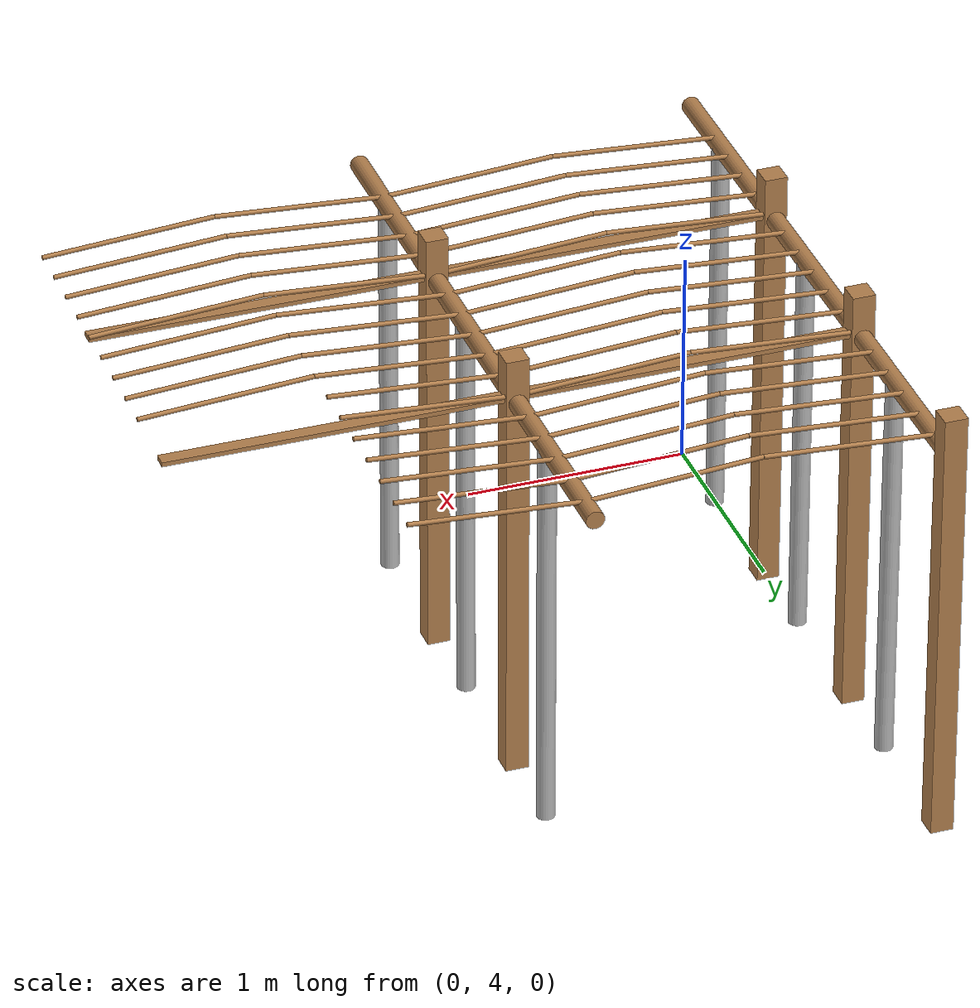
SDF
<sdf version="1.4">
 <model name="pergola">
  <include><name>post_5</name><pose>0.0 5.0 0 0 0 0</pose><uri>model://post</uri></include>
  <include><name>post_6</name><pose>0.0 6.0 0 0 0 0</pose><uri>model://post</uri></include>
  <include><name>post_7</name><pose>0.0 7.0 0 0 0 0</pose><uri>model://post</uri></include>
  <include><name>post_16</name><pose>1.5 5.0 0 0 0 0</pose><uri>model://post</uri></include>
  <include><name>post_17</name><pose>1.5 6.0 0 0 0 0</pose><uri>model://post</uri></include>
  <link name="beam_5">
   <pose>0.75 5.0 1.81 0 0 0</pose>
   <collision name="collision"><geometry><box><size>1.5 0.06 0.02</size></box></geometry></collision>
   <visual name="visual">
    <geometry><box><size>1.5 0.06 0.02</size></box></geometry>
    <material><script><name>Gazebo/Wood</name></script></material>
   </visual>
   <inertial>
    <mass>5</mass>
    <inertia>
     <ixx>0.0016666666666666668</ixx>
     <ixy>0.0</ixy>
     <ixz>0.0</ixz>
     <iyy>0.9390000000000001</iyy>
     <iyz>0.0</iyz>
     <izz>0.9376666666666665</izz>
    </inertia>
   </inertial>
  </link>
  <link name="beam_6">
   <pose>0.75 6.0 1.81 0 0 0</pose>
   <collision name="collision"><geometry><box><size>1.5 0.06 0.02</size></box></geometry></collision>
   <visual name="visual">
    <geometry><box><size>1.5 0.06 0.02</size></box></geometry>
    <material><script><name>Gazebo/Wood</name></script></material>
   </visual>
   <inertial>
    <mass>5</mass>
    <inertia>
     <ixx>0.0016666666666666668</ixx>
     <ixy>0.0</ixy>
     <ixz>0.0</ixz>
     <iyy>0.9390000000000001</iyy>
     <iyz>0.0</iyz>
     <izz>0.9376666666666665</izz>
    </inertia>
   </inertial>
  </link>
  <link name="beam_16">
   <pose>2.25 5.0 1.81 0 0 0</pose>
   <collision name="collision"><geometry><box><size>1.5 0.06 0.02</size></box></geometry></collision>
   <visual name="visual">
    <geometry><box><size>1.5 0.06 0.02</size></box></geometry>
    <material><script><name>Gazebo/Wood</name></script></material>
   </visual>
   <inertial>
    <mass>5</mass>
    <inertia>
     <ixx>0.0016666666666666668</ixx>
     <ixy>0.0</ixy>
     <ixz>0.0</ixz>
     <iyy>0.9390000000000001</iyy>
     <iyz>0.0</iyz>
     <izz>0.9376666666666665</izz>
    </inertia>
   </inertial>
  </link>
  <link name="beam_17">
   <pose>2.25 6.0 1.81 0 0 0</pose>
   <collision name="collision"><geometry><box><size>1.5 0.06 0.02</size></box></geometry></collision>
   <visual name="visual">
    <geometry><box><size>1.5 0.06 0.02</size></box></geometry>
    <material><script><name>Gazebo/Wood</name></script></material>
   </visual>
   <inertial>
    <mass>5</mass>
    <inertia>
     <ixx>0.0016666666666666668</ixx>
     <ixy>0.0</ixy>
     <ixz>0.0</ixz>
     <iyy>0.9390000000000001</iyy>
     <iyz>0.0</iyz>
     <izz>0.9376666666666665</izz>
    </inertia>
   </inertial>
  </link>
  <include><name>tree_4</name><pose>0.0 4.4 0 0 0 0</pose><uri>model://tree_trunk</uri></include>
  <include><name>tree_5</name><pose>0.0 5.4 0 0 0 0</pose><uri>model://tree_trunk</uri></include>
  <include><name>tree_6</name><pose>0.0 6.4 0 0 0 0</pose><uri>model://tree_trunk</uri></include>
  <include><name>tree_14</name><pose>1.5 4.4 0 0 0 0</pose><uri>model://tree_trunk</uri></include>
  <include><name>tree_15</name><pose>1.5 5.4 0 0 0 0</pose><uri>model://tree_trunk</uri></include>
  <include><name>tree_16</name><pose>1.5 6.4 0 0 0 0</pose><uri>model://tree_trunk</uri></include>
  <link name="baseBranch_4">
   <pose>0.0 4.5 1.8 1.5707963267948966 0 0</pose>
   <collision name="collision">
    <geometry><cylinder><radius>0.04</radius><length>0.94</length></cylinder></geometry>
   </collision>
   <visual name="visual">
    <geometry><cylinder><radius>0.04</radius><length>0.94</length></cylinder></geometry>
    <material><script><name>Gazebo/WoodFloor</name></script></material>
   </visual>
   <inertial>
    <mass>10</mass>
    <inertia>
     <ixx>0.7403333333333334</ixx>
     <ixy>0.0</ixy>
     <ixz>0.0</ixz>
     <iyy>0.7403333333333334</iyy>
     <iyz>0.0</iyz>
     <izz>0.008</izz>
    </inertia>
   </inertial>
  </link>
  <link name="baseBranch_5">
   <pose>0.0 5.5 1.8 1.5707963267948966 0 0</pose>
   <collision name="collision">
    <geometry><cylinder><radius>0.04</radius><length>0.94</length></cylinder></geometry>
   </collision>
   <visual name="visual">
    <geometry><cylinder><radius>0.04</radius><length>0.94</length></cylinder></geometry>
    <material><script><name>Gazebo/WoodFloor</name></script></material>
   </visual>
   <inertial>
    <mass>10</mass>
    <inertia>
     <ixx>0.7403333333333334</ixx>
     <ixy>0.0</ixy>
     <ixz>0.0</ixz>
     <iyy>0.7403333333333334</iyy>
     <iyz>0.0</iyz>
     <izz>0.008</izz>
    </inertia>
   </inertial>
  </link>
  <link name="baseBranch_6">
   <pose>0.0 6.5 1.8 1.5707963267948966 0 0</pose>
   <collision name="collision">
    <geometry><cylinder><radius>0.04</radius><length>0.94</length></cylinder></geometry>
   </collision>
   <visual name="visual">
    <geometry><cylinder><radius>0.04</radius><length>0.94</length></cylinder></geometry>
    <material><script><name>Gazebo/WoodFloor</name></script></material>
   </visual>
   <inertial>
    <mass>10</mass>
    <inertia>
     <ixx>0.7403333333333334</ixx>
     <ixy>0.0</ixy>
     <ixz>0.0</ixz>
     <iyy>0.7403333333333334</iyy>
     <iyz>0.0</iyz>
     <izz>0.008</izz>
    </inertia>
   </inertial>
  </link>
  <link name="baseBranch_14">
   <pose>1.5 4.5 1.8 1.5707963267948966 0 0</pose>
   <collision name="collision">
    <geometry><cylinder><radius>0.04</radius><length>0.94</length></cylinder></geometry>
   </collision>
   <visual name="visual">
    <geometry><cylinder><radius>0.04</radius><length>0.94</length></cylinder></geometry>
    <material><script><name>Gazebo/WoodFloor</name></script></material>
   </visual>
   <inertial>
    <mass>10</mass>
    <inertia>
     <ixx>0.7403333333333334</ixx>
     <ixy>0.0</ixy>
     <ixz>0.0</ixz>
     <iyy>0.7403333333333334</iyy>
     <iyz>0.0</iyz>
     <izz>0.008</izz>
    </inertia>
   </inertial>
  </link>
  <link name="baseBranch_15">
   <pose>1.5 5.5 1.8 1.5707963267948966 0 0</pose>
   <collision name="collision">
    <geometry><cylinder><radius>0.04</radius><length>0.94</length></cylinder></geometry>
   </collision>
   <visual name="visual">
    <geometry><cylinder><radius>0.04</radius><length>0.94</length></cylinder></geometry>
    <material><script><name>Gazebo/WoodFloor</name></script></material>
   </visual>
   <inertial>
    <mass>10</mass>
    <inertia>
     <ixx>0.7403333333333334</ixx>
     <ixy>0.0</ixy>
     <ixz>0.0</ixz>
     <iyy>0.7403333333333334</iyy>
     <iyz>0.0</iyz>
     <izz>0.008</izz>
    </inertia>
   </inertial>
  </link>
  <link name="baseBranch_16">
   <pose>1.5 6.5 1.8 1.5707963267948966 0 0</pose>
   <collision name="collision">
    <geometry><cylinder><radius>0.04</radius><length>0.94</length></cylinder></geometry>
   </collision>
   <visual name="visual">
    <geometry><cylinder><radius>0.04</radius><length>0.94</length></cylinder></geometry>
    <material><script><name>Gazebo/WoodFloor</name></script></material>
   </visual>
   <inertial>
    <mass>10</mass>
    <inertia>
     <ixx>0.7403333333333334</ixx>
     <ixy>0.0</ixy>
     <ixz>0.0</ixz>
     <iyy>0.7403333333333334</iyy>
     <iyz>0.0</iyz>
     <izz>0.008</izz>
    </inertia>
   </inertial>
  </link>
  <link name="vine_52">
   <pose>0.375 4.363333333333333 1.85 0 1.5042281630190728 0</pose>
   <collision name="collision">
    <geometry><cylinder><radius>0.01</radius><length>0.7516648189186453</length></cylinder></geometry>
   </collision>
   <visual name="visual">
    <geometry><cylinder><radius>0.01</radius><length>0.7516648189186453</length></cylinder></geometry>
    <material><script><name>Gazebo/WoodFloor</name></script></material>
   </visual>
   <inertial>
    <mass>5</mass>
    <inertia>
     <ixx>0.23554166666666657</ixx>
     <ixy>0.0</ixy>
     <ixz>0.0</ixz>
     <iyy>0.23554166666666657</iyy>
     <iyz>0.0</iyz>
     <izz>0.00025</izz>
    </inertia>
   </inertial>
  </link>
  <link name="vine_53">
   <pose>1.125 4.363333333333333 1.85 0 -1.5042281630190728 0</pose>
   <collision name="collision">
    <geometry><cylinder><radius>0.01</radius><length>0.7516648189186453</length></cylinder></geometry>
   </collision>
   <visual name="visual">
    <geometry><cylinder><radius>0.01</radius><length>0.7516648189186453</length></cylinder></geometry>
    <material><script><name>Gazebo/WoodFloor</name></script></material>
   </visual>
   <inertial>
    <mass>5</mass>
    <inertia>
     <ixx>0.23554166666666657</ixx>
     <ixy>0.0</ixy>
     <ixz>0.0</ixz>
     <iyy>0.23554166666666657</iyy>
     <iyz>0.0</iyz>
     <izz>0.00025</izz>
    </inertia>
   </inertial>
  </link>
  <link name="vine_54">
   <pose>0.375 4.53 1.85 0 1.5042281630190728 0</pose>
   <collision name="collision">
    <geometry><cylinder><radius>0.01</radius><length>0.7516648189186453</length></cylinder></geometry>
   </collision>
   <visual name="visual">
    <geometry><cylinder><radius>0.01</radius><length>0.7516648189186453</length></cylinder></geometry>
    <material><script><name>Gazebo/WoodFloor</name></script></material>
   </visual>
   <inertial>
    <mass>5</mass>
    <inertia>
     <ixx>0.23554166666666657</ixx>
     <ixy>0.0</ixy>
     <ixz>0.0</ixz>
     <iyy>0.23554166666666657</iyy>
     <iyz>0.0</iyz>
     <izz>0.00025</izz>
    </inertia>
   </inertial>
  </link>
  <link name="vine_55">
   <pose>1.125 4.53 1.85 0 -1.5042281630190728 0</pose>
   <collision name="collision">
    <geometry><cylinder><radius>0.01</radius><length>0.7516648189186453</length></cylinder></geometry>
   </collision>
   <visual name="visual">
    <geometry><cylinder><radius>0.01</radius><length>0.7516648189186453</length></cylinder></geometry>
    <material><script><name>Gazebo/WoodFloor</name></script></material>
   </visual>
   <inertial>
    <mass>5</mass>
    <inertia>
     <ixx>0.23554166666666657</ixx>
     <ixy>0.0</ixy>
     <ixz>0.0</ixz>
     <iyy>0.23554166666666657</iyy>
     <iyz>0.0</iyz>
     <izz>0.00025</izz>
    </inertia>
   </inertial>
  </link>
  <link name="vine_56">
   <pose>0.375 4.696666666666666 1.85 0 1.5042281630190728 0</pose>
   <collision name="collision">
    <geometry><cylinder><radius>0.01</radius><length>0.7516648189186453</length></cylinder></geometry>
   </collision>
   <visual name="visual">
    <geometry><cylinder><radius>0.01</radius><length>0.7516648189186453</length></cylinder></geometry>
    <material><script><name>Gazebo/WoodFloor</name></script></material>
   </visual>
   <inertial>
    <mass>5</mass>
    <inertia>
     <ixx>0.23554166666666657</ixx>
     <ixy>0.0</ixy>
     <ixz>0.0</ixz>
     <iyy>0.23554166666666657</iyy>
     <iyz>0.0</iyz>
     <izz>0.00025</izz>
    </inertia>
   </inertial>
  </link>
  <link name="vine_57">
   <pose>1.125 4.696666666666666 1.85 0 -1.5042281630190728 0</pose>
   <collision name="collision">
    <geometry><cylinder><radius>0.01</radius><length>0.7516648189186453</length></cylinder></geometry>
   </collision>
   <visual name="visual">
    <geometry><cylinder><radius>0.01</radius><length>0.7516648189186453</length></cylinder></geometry>
    <material><script><name>Gazebo/WoodFloor</name></script></material>
   </visual>
   <inertial>
    <mass>5</mass>
    <inertia>
     <ixx>0.23554166666666657</ixx>
     <ixy>0.0</ixy>
     <ixz>0.0</ixz>
     <iyy>0.23554166666666657</iyy>
     <iyz>0.0</iyz>
     <izz>0.00025</izz>
    </inertia>
   </inertial>
  </link>
  <link name="vine_58">
   <pose>0.375 4.863333333333333 1.85 0 1.5042281630190728 0</pose>
   <collision name="collision">
    <geometry><cylinder><radius>0.01</radius><length>0.7516648189186453</length></cylinder></geometry>
   </collision>
   <visual name="visual">
    <geometry><cylinder><radius>0.01</radius><length>0.7516648189186453</length></cylinder></geometry>
    <material><script><name>Gazebo/WoodFloor</name></script></material>
   </visual>
   <inertial>
    <mass>5</mass>
    <inertia>
     <ixx>0.23554166666666657</ixx>
     <ixy>0.0</ixy>
     <ixz>0.0</ixz>
     <iyy>0.23554166666666657</iyy>
     <iyz>0.0</iyz>
     <izz>0.00025</izz>
    </inertia>
   </inertial>
  </link>
  <link name="vine_59">
   <pose>1.125 4.863333333333333 1.85 0 -1.5042281630190728 0</pose>
   <collision name="collision">
    <geometry><cylinder><radius>0.01</radius><length>0.7516648189186453</length></cylinder></geometry>
   </collision>
   <visual name="visual">
    <geometry><cylinder><radius>0.01</radius><length>0.7516648189186453</length></cylinder></geometry>
    <material><script><name>Gazebo/WoodFloor</name></script></material>
   </visual>
   <inertial>
    <mass>5</mass>
    <inertia>
     <ixx>0.23554166666666657</ixx>
     <ixy>0.0</ixy>
     <ixz>0.0</ixz>
     <iyy>0.23554166666666657</iyy>
     <iyz>0.0</iyz>
     <izz>0.00025</izz>
    </inertia>
   </inertial>
  </link>
  <link name="vine_60">
   <pose>0.375 5.03 1.85 0 1.5042281630190728 0</pose>
   <collision name="collision">
    <geometry><cylinder><radius>0.01</radius><length>0.7516648189186453</length></cylinder></geometry>
   </collision>
   <visual name="visual">
    <geometry><cylinder><radius>0.01</radius><length>0.7516648189186453</length></cylinder></geometry>
    <material><script><name>Gazebo/WoodFloor</name></script></material>
   </visual>
   <inertial>
    <mass>5</mass>
    <inertia>
     <ixx>0.23554166666666657</ixx>
     <ixy>0.0</ixy>
     <ixz>0.0</ixz>
     <iyy>0.23554166666666657</iyy>
     <iyz>0.0</iyz>
     <izz>0.00025</izz>
    </inertia>
   </inertial>
  </link>
  <link name="vine_61">
   <pose>1.125 5.03 1.85 0 -1.5042281630190728 0</pose>
   <collision name="collision">
    <geometry><cylinder><radius>0.01</radius><length>0.7516648189186453</length></cylinder></geometry>
   </collision>
   <visual name="visual">
    <geometry><cylinder><radius>0.01</radius><length>0.7516648189186453</length></cylinder></geometry>
    <material><script><name>Gazebo/WoodFloor</name></script></material>
   </visual>
   <inertial>
    <mass>5</mass>
    <inertia>
     <ixx>0.23554166666666657</ixx>
     <ixy>0.0</ixy>
     <ixz>0.0</ixz>
     <iyy>0.23554166666666657</iyy>
     <iyz>0.0</iyz>
     <izz>0.00025</izz>
    </inertia>
   </inertial>
  </link>
  <link name="vine_62">
   <pose>0.375 5.196666666666666 1.85 0 1.5042281630190728 0</pose>
   <collision name="collision">
    <geometry><cylinder><radius>0.01</radius><length>0.7516648189186453</length></cylinder></geometry>
   </collision>
   <visual name="visual">
    <geometry><cylinder><radius>0.01</radius><length>0.7516648189186453</length></cylinder></geometry>
    <material><script><name>Gazebo/WoodFloor</name></script></material>
   </visual>
   <inertial>
    <mass>5</mass>
    <inertia>
     <ixx>0.23554166666666657</ixx>
     <ixy>0.0</ixy>
     <ixz>0.0</ixz>
     <iyy>0.23554166666666657</iyy>
     <iyz>0.0</iyz>
     <izz>0.00025</izz>
    </inertia>
   </inertial>
  </link>
  <link name="vine_63">
   <pose>1.125 5.196666666666666 1.85 0 -1.5042281630190728 0</pose>
   <collision name="collision">
    <geometry><cylinder><radius>0.01</radius><length>0.7516648189186453</length></cylinder></geometry>
   </collision>
   <visual name="visual">
    <geometry><cylinder><radius>0.01</radius><length>0.7516648189186453</length></cylinder></geometry>
    <material><script><name>Gazebo/WoodFloor</name></script></material>
   </visual>
   <inertial>
    <mass>5</mass>
    <inertia>
     <ixx>0.23554166666666657</ixx>
     <ixy>0.0</ixy>
     <ixz>0.0</ixz>
     <iyy>0.23554166666666657</iyy>
     <iyz>0.0</iyz>
     <izz>0.00025</izz>
    </inertia>
   </inertial>
  </link>
  <link name="vine_64">
   <pose>0.375 5.363333333333333 1.85 0 1.5042281630190728 0</pose>
   <collision name="collision">
    <geometry><cylinder><radius>0.01</radius><length>0.7516648189186453</length></cylinder></geometry>
   </collision>
   <visual name="visual">
    <geometry><cylinder><radius>0.01</radius><length>0.7516648189186453</length></cylinder></geometry>
    <material><script><name>Gazebo/WoodFloor</name></script></material>
   </visual>
   <inertial>
    <mass>5</mass>
    <inertia>
     <ixx>0.23554166666666657</ixx>
     <ixy>0.0</ixy>
     <ixz>0.0</ixz>
     <iyy>0.23554166666666657</iyy>
     <iyz>0.0</iyz>
     <izz>0.00025</izz>
    </inertia>
   </inertial>
  </link>
  <link name="vine_65">
   <pose>1.125 5.363333333333333 1.85 0 -1.5042281630190728 0</pose>
   <collision name="collision">
    <geometry><cylinder><radius>0.01</radius><length>0.7516648189186453</length></cylinder></geometry>
   </collision>
   <visual name="visual">
    <geometry><cylinder><radius>0.01</radius><length>0.7516648189186453</length></cylinder></geometry>
    <material><script><name>Gazebo/WoodFloor</name></script></material>
   </visual>
   <inertial>
    <mass>5</mass>
    <inertia>
     <ixx>0.23554166666666657</ixx>
     <ixy>0.0</ixy>
     <ixz>0.0</ixz>
     <iyy>0.23554166666666657</iyy>
     <iyz>0.0</iyz>
     <izz>0.00025</izz>
    </inertia>
   </inertial>
  </link>
  <link name="vine_66">
   <pose>0.375 5.53 1.85 0 1.5042281630190728 0</pose>
   <collision name="collision">
    <geometry><cylinder><radius>0.01</radius><length>0.7516648189186453</length></cylinder></geometry>
   </collision>
   <visual name="visual">
    <geometry><cylinder><radius>0.01</radius><length>0.7516648189186453</length></cylinder></geometry>
    <material><script><name>Gazebo/WoodFloor</name></script></material>
   </visual>
   <inertial>
    <mass>5</mass>
    <inertia>
     <ixx>0.23554166666666657</ixx>
     <ixy>0.0</ixy>
     <ixz>0.0</ixz>
     <iyy>0.23554166666666657</iyy>
     <iyz>0.0</iyz>
     <izz>0.00025</izz>
    </inertia>
   </inertial>
  </link>
  <link name="vine_67">
   <pose>1.125 5.53 1.85 0 -1.5042281630190728 0</pose>
   <collision name="collision">
    <geometry><cylinder><radius>0.01</radius><length>0.7516648189186453</length></cylinder></geometry>
   </collision>
   <visual name="visual">
    <geometry><cylinder><radius>0.01</radius><length>0.7516648189186453</length></cylinder></geometry>
    <material><script><name>Gazebo/WoodFloor</name></script></material>
   </visual>
   <inertial>
    <mass>5</mass>
    <inertia>
     <ixx>0.23554166666666657</ixx>
     <ixy>0.0</ixy>
     <ixz>0.0</ixz>
     <iyy>0.23554166666666657</iyy>
     <iyz>0.0</iyz>
     <izz>0.00025</izz>
    </inertia>
   </inertial>
  </link>
  <link name="vine_68">
   <pose>0.375 5.696666666666666 1.85 0 1.5042281630190728 0</pose>
   <collision name="collision">
    <geometry><cylinder><radius>0.01</radius><length>0.7516648189186453</length></cylinder></geometry>
   </collision>
   <visual name="visual">
    <geometry><cylinder><radius>0.01</radius><length>0.7516648189186453</length></cylinder></geometry>
    <material><script><name>Gazebo/WoodFloor</name></script></material>
   </visual>
   <inertial>
    <mass>5</mass>
    <inertia>
     <ixx>0.23554166666666657</ixx>
     <ixy>0.0</ixy>
     <ixz>0.0</ixz>
     <iyy>0.23554166666666657</iyy>
     <iyz>0.0</iyz>
     <izz>0.00025</izz>
    </inertia>
   </inertial>
  </link>
  <link name="vine_69">
   <pose>1.125 5.696666666666666 1.85 0 -1.5042281630190728 0</pose>
   <collision name="collision">
    <geometry><cylinder><radius>0.01</radius><length>0.7516648189186453</length></cylinder></geometry>
   </collision>
   <visual name="visual">
    <geometry><cylinder><radius>0.01</radius><length>0.7516648189186453</length></cylinder></geometry>
    <material><script><name>Gazebo/WoodFloor</name></script></material>
   </visual>
   <inertial>
    <mass>5</mass>
    <inertia>
     <ixx>0.23554166666666657</ixx>
     <ixy>0.0</ixy>
     <ixz>0.0</ixz>
     <iyy>0.23554166666666657</iyy>
     <iyz>0.0</iyz>
     <izz>0.00025</izz>
    </inertia>
   </inertial>
  </link>
  <link name="vine_70">
   <pose>0.375 5.863333333333333 1.85 0 1.5042281630190728 0</pose>
   <collision name="collision">
    <geometry><cylinder><radius>0.01</radius><length>0.7516648189186453</length></cylinder></geometry>
   </collision>
   <visual name="visual">
    <geometry><cylinder><radius>0.01</radius><length>0.7516648189186453</length></cylinder></geometry>
    <material><script><name>Gazebo/WoodFloor</name></script></material>
   </visual>
   <inertial>
    <mass>5</mass>
    <inertia>
     <ixx>0.23554166666666657</ixx>
     <ixy>0.0</ixy>
     <ixz>0.0</ixz>
     <iyy>0.23554166666666657</iyy>
     <iyz>0.0</iyz>
     <izz>0.00025</izz>
    </inertia>
   </inertial>
  </link>
  <link name="vine_71">
   <pose>1.125 5.863333333333333 1.85 0 -1.5042281630190728 0</pose>
   <collision name="collision">
    <geometry><cylinder><radius>0.01</radius><length>0.7516648189186453</length></cylinder></geometry>
   </collision>
   <visual name="visual">
    <geometry><cylinder><radius>0.01</radius><length>0.7516648189186453</length></cylinder></geometry>
    <material><script><name>Gazebo/WoodFloor</name></script></material>
   </visual>
   <inertial>
    <mass>5</mass>
    <inertia>
     <ixx>0.23554166666666657</ixx>
     <ixy>0.0</ixy>
     <ixz>0.0</ixz>
     <iyy>0.23554166666666657</iyy>
     <iyz>0.0</iyz>
     <izz>0.00025</izz>
    </inertia>
   </inertial>
  </link>
  <link name="vine_72">
   <pose>0.375 6.03 1.85 0 1.5042281630190728 0</pose>
   <collision name="collision">
    <geometry><cylinder><radius>0.01</radius><length>0.7516648189186453</length></cylinder></geometry>
   </collision>
   <visual name="visual">
    <geometry><cylinder><radius>0.01</radius><length>0.7516648189186453</length></cylinder></geometry>
    <material><script><name>Gazebo/WoodFloor</name></script></material>
   </visual>
   <inertial>
    <mass>5</mass>
    <inertia>
     <ixx>0.23554166666666657</ixx>
     <ixy>0.0</ixy>
     <ixz>0.0</ixz>
     <iyy>0.23554166666666657</iyy>
     <iyz>0.0</iyz>
     <izz>0.00025</izz>
    </inertia>
   </inertial>
  </link>
  <link name="vine_73">
   <pose>1.125 6.03 1.85 0 -1.5042281630190728 0</pose>
   <collision name="collision">
    <geometry><cylinder><radius>0.01</radius><length>0.7516648189186453</length></cylinder></geometry>
   </collision>
   <visual name="visual">
    <geometry><cylinder><radius>0.01</radius><length>0.7516648189186453</length></cylinder></geometry>
    <material><script><name>Gazebo/WoodFloor</name></script></material>
   </visual>
   <inertial>
    <mass>5</mass>
    <inertia>
     <ixx>0.23554166666666657</ixx>
     <ixy>0.0</ixy>
     <ixz>0.0</ixz>
     <iyy>0.23554166666666657</iyy>
     <iyz>0.0</iyz>
     <izz>0.00025</izz>
    </inertia>
   </inertial>
  </link>
  <link name="vine_74">
   <pose>0.375 6.196666666666666 1.85 0 1.5042281630190728 0</pose>
   <collision name="collision">
    <geometry><cylinder><radius>0.01</radius><length>0.7516648189186453</length></cylinder></geometry>
   </collision>
   <visual name="visual">
    <geometry><cylinder><radius>0.01</radius><length>0.7516648189186453</length></cylinder></geometry>
    <material><script><name>Gazebo/WoodFloor</name></script></material>
   </visual>
   <inertial>
    <mass>5</mass>
    <inertia>
     <ixx>0.23554166666666657</ixx>
     <ixy>0.0</ixy>
     <ixz>0.0</ixz>
     <iyy>0.23554166666666657</iyy>
     <iyz>0.0</iyz>
     <izz>0.00025</izz>
    </inertia>
   </inertial>
  </link>
  <link name="vine_75">
   <pose>1.125 6.196666666666666 1.85 0 -1.5042281630190728 0</pose>
   <collision name="collision">
    <geometry><cylinder><radius>0.01</radius><length>0.7516648189186453</length></cylinder></geometry>
   </collision>
   <visual name="visual">
    <geometry><cylinder><radius>0.01</radius><length>0.7516648189186453</length></cylinder></geometry>
    <material><script><name>Gazebo/WoodFloor</name></script></material>
   </visual>
   <inertial>
    <mass>5</mass>
    <inertia>
     <ixx>0.23554166666666657</ixx>
     <ixy>0.0</ixy>
     <ixz>0.0</ixz>
     <iyy>0.23554166666666657</iyy>
     <iyz>0.0</iyz>
     <izz>0.00025</izz>
    </inertia>
   </inertial>
  </link>
  <link name="vine_76">
   <pose>0.375 6.363333333333333 1.85 0 1.5042281630190728 0</pose>
   <collision name="collision">
    <geometry><cylinder><radius>0.01</radius><length>0.7516648189186453</length></cylinder></geometry>
   </collision>
   <visual name="visual">
    <geometry><cylinder><radius>0.01</radius><length>0.7516648189186453</length></cylinder></geometry>
    <material><script><name>Gazebo/WoodFloor</name></script></material>
   </visual>
   <inertial>
    <mass>5</mass>
    <inertia>
     <ixx>0.23554166666666657</ixx>
     <ixy>0.0</ixy>
     <ixz>0.0</ixz>
     <iyy>0.23554166666666657</iyy>
     <iyz>0.0</iyz>
     <izz>0.00025</izz>
    </inertia>
   </inertial>
  </link>
  <link name="vine_77">
   <pose>1.125 6.363333333333333 1.85 0 -1.5042281630190728 0</pose>
   <collision name="collision">
    <geometry><cylinder><radius>0.01</radius><length>0.7516648189186453</length></cylinder></geometry>
   </collision>
   <visual name="visual">
    <geometry><cylinder><radius>0.01</radius><length>0.7516648189186453</length></cylinder></geometry>
    <material><script><name>Gazebo/WoodFloor</name></script></material>
   </visual>
   <inertial>
    <mass>5</mass>
    <inertia>
     <ixx>0.23554166666666657</ixx>
     <ixy>0.0</ixy>
     <ixz>0.0</ixz>
     <iyy>0.23554166666666657</iyy>
     <iyz>0.0</iyz>
     <izz>0.00025</izz>
    </inertia>
   </inertial>
  </link>
  <link name="vine_78">
   <pose>0.375 6.53 1.85 0 1.5042281630190728 0</pose>
   <collision name="collision">
    <geometry><cylinder><radius>0.01</radius><length>0.7516648189186453</length></cylinder></geometry>
   </collision>
   <visual name="visual">
    <geometry><cylinder><radius>0.01</radius><length>0.7516648189186453</length></cylinder></geometry>
    <material><script><name>Gazebo/WoodFloor</name></script></material>
   </visual>
   <inertial>
    <mass>5</mass>
    <inertia>
     <ixx>0.23554166666666657</ixx>
     <ixy>0.0</ixy>
     <ixz>0.0</ixz>
     <iyy>0.23554166666666657</iyy>
     <iyz>0.0</iyz>
     <izz>0.00025</izz>
    </inertia>
   </inertial>
  </link>
  <link name="vine_79">
   <pose>1.125 6.53 1.85 0 -1.5042281630190728 0</pose>
   <collision name="collision">
    <geometry><cylinder><radius>0.01</radius><length>0.7516648189186453</length></cylinder></geometry>
   </collision>
   <visual name="visual">
    <geometry><cylinder><radius>0.01</radius><length>0.7516648189186453</length></cylinder></geometry>
    <material><script><name>Gazebo/WoodFloor</name></script></material>
   </visual>
   <inertial>
    <mass>5</mass>
    <inertia>
     <ixx>0.23554166666666657</ixx>
     <ixy>0.0</ixy>
     <ixz>0.0</ixz>
     <iyy>0.23554166666666657</iyy>
     <iyz>0.0</iyz>
     <izz>0.00025</izz>
    </inertia>
   </inertial>
  </link>
  <link name="vine_80">
   <pose>0.375 6.696666666666666 1.85 0 1.5042281630190728 0</pose>
   <collision name="collision">
    <geometry><cylinder><radius>0.01</radius><length>0.7516648189186453</length></cylinder></geometry>
   </collision>
   <visual name="visual">
    <geometry><cylinder><radius>0.01</radius><length>0.7516648189186453</length></cylinder></geometry>
    <material><script><name>Gazebo/WoodFloor</name></script></material>
   </visual>
   <inertial>
    <mass>5</mass>
    <inertia>
     <ixx>0.23554166666666657</ixx>
     <ixy>0.0</ixy>
     <ixz>0.0</ixz>
     <iyy>0.23554166666666657</iyy>
     <iyz>0.0</iyz>
     <izz>0.00025</izz>
    </inertia>
   </inertial>
  </link>
  <link name="vine_81">
   <pose>1.125 6.696666666666666 1.85 0 -1.5042281630190728 0</pose>
   <collision name="collision">
    <geometry><cylinder><radius>0.01</radius><length>0.7516648189186453</length></cylinder></geometry>
   </collision>
   <visual name="visual">
    <geometry><cylinder><radius>0.01</radius><length>0.7516648189186453</length></cylinder></geometry>
    <material><script><name>Gazebo/WoodFloor</name></script></material>
   </visual>
   <inertial>
    <mass>5</mass>
    <inertia>
     <ixx>0.23554166666666657</ixx>
     <ixy>0.0</ixy>
     <ixz>0.0</ixz>
     <iyy>0.23554166666666657</iyy>
     <iyz>0.0</iyz>
     <izz>0.00025</izz>
    </inertia>
   </inertial>
  </link>
  <link name="vine_82">
   <pose>0.375 6.863333333333333 1.85 0 1.5042281630190728 0</pose>
   <collision name="collision">
    <geometry><cylinder><radius>0.01</radius><length>0.7516648189186453</length></cylinder></geometry>
   </collision>
   <visual name="visual">
    <geometry><cylinder><radius>0.01</radius><length>0.7516648189186453</length></cylinder></geometry>
    <material><script><name>Gazebo/WoodFloor</name></script></material>
   </visual>
   <inertial>
    <mass>5</mass>
    <inertia>
     <ixx>0.23554166666666657</ixx>
     <ixy>0.0</ixy>
     <ixz>0.0</ixz>
     <iyy>0.23554166666666657</iyy>
     <iyz>0.0</iyz>
     <izz>0.00025</izz>
    </inertia>
   </inertial>
  </link>
  <link name="vine_83">
   <pose>1.125 6.863333333333333 1.85 0 -1.5042281630190728 0</pose>
   <collision name="collision">
    <geometry><cylinder><radius>0.01</radius><length>0.7516648189186453</length></cylinder></geometry>
   </collision>
   <visual name="visual">
    <geometry><cylinder><radius>0.01</radius><length>0.7516648189186453</length></cylinder></geometry>
    <material><script><name>Gazebo/WoodFloor</name></script></material>
   </visual>
   <inertial>
    <mass>5</mass>
    <inertia>
     <ixx>0.23554166666666657</ixx>
     <ixy>0.0</ixy>
     <ixz>0.0</ixz>
     <iyy>0.23554166666666657</iyy>
     <iyz>0.0</iyz>
     <izz>0.00025</izz>
    </inertia>
   </inertial>
  </link>
  <link name="vine_172">
   <pose>1.875 4.363333333333333 1.85 0 1.5042281630190728 0</pose>
   <collision name="collision">
    <geometry><cylinder><radius>0.01</radius><length>0.7516648189186453</length></cylinder></geometry>
   </collision>
   <visual name="visual">
    <geometry><cylinder><radius>0.01</radius><length>0.7516648189186453</length></cylinder></geometry>
    <material><script><name>Gazebo/WoodFloor</name></script></material>
   </visual>
   <inertial>
    <mass>5</mass>
    <inertia>
     <ixx>0.23554166666666657</ixx>
     <ixy>0.0</ixy>
     <ixz>0.0</ixz>
     <iyy>0.23554166666666657</iyy>
     <iyz>0.0</iyz>
     <izz>0.00025</izz>
    </inertia>
   </inertial>
  </link>
  <link name="vine_173">
   <pose>2.625 4.363333333333333 1.85 0 -1.5042281630190728 0</pose>
   <collision name="collision">
    <geometry><cylinder><radius>0.01</radius><length>0.7516648189186453</length></cylinder></geometry>
   </collision>
   <visual name="visual">
    <geometry><cylinder><radius>0.01</radius><length>0.7516648189186453</length></cylinder></geometry>
    <material><script><name>Gazebo/WoodFloor</name></script></material>
   </visual>
   <inertial>
    <mass>5</mass>
    <inertia>
     <ixx>0.23554166666666657</ixx>
     <ixy>0.0</ixy>
     <ixz>0.0</ixz>
     <iyy>0.23554166666666657</iyy>
     <iyz>0.0</iyz>
     <izz>0.00025</izz>
    </inertia>
   </inertial>
  </link>
  <link name="vine_174">
   <pose>1.875 4.53 1.85 0 1.5042281630190728 0</pose>
   <collision name="collision">
    <geometry><cylinder><radius>0.01</radius><length>0.7516648189186453</length></cylinder></geometry>
   </collision>
   <visual name="visual">
    <geometry><cylinder><radius>0.01</radius><length>0.7516648189186453</length></cylinder></geometry>
    <material><script><name>Gazebo/WoodFloor</name></script></material>
   </visual>
   <inertial>
    <mass>5</mass>
    <inertia>
     <ixx>0.23554166666666657</ixx>
     <ixy>0.0</ixy>
     <ixz>0.0</ixz>
     <iyy>0.23554166666666657</iyy>
     <iyz>0.0</iyz>
     <izz>0.00025</izz>
    </inertia>
   </inertial>
  </link>
  <link name="vine_175">
   <pose>2.625 4.53 1.85 0 -1.5042281630190728 0</pose>
   <collision name="collision">
    <geometry><cylinder><radius>0.01</radius><length>0.7516648189186453</length></cylinder></geometry>
   </collision>
   <visual name="visual">
    <geometry><cylinder><radius>0.01</radius><length>0.7516648189186453</length></cylinder></geometry>
    <material><script><name>Gazebo/WoodFloor</name></script></material>
   </visual>
   <inertial>
    <mass>5</mass>
    <inertia>
     <ixx>0.23554166666666657</ixx>
     <ixy>0.0</ixy>
     <ixz>0.0</ixz>
     <iyy>0.23554166666666657</iyy>
     <iyz>0.0</iyz>
     <izz>0.00025</izz>
    </inertia>
   </inertial>
  </link>
  <link name="vine_176">
   <pose>1.875 4.696666666666666 1.85 0 1.5042281630190728 0</pose>
   <collision name="collision">
    <geometry><cylinder><radius>0.01</radius><length>0.7516648189186453</length></cylinder></geometry>
   </collision>
   <visual name="visual">
    <geometry><cylinder><radius>0.01</radius><length>0.7516648189186453</length></cylinder></geometry>
    <material><script><name>Gazebo/WoodFloor</name></script></material>
   </visual>
   <inertial>
    <mass>5</mass>
    <inertia>
     <ixx>0.23554166666666657</ixx>
     <ixy>0.0</ixy>
     <ixz>0.0</ixz>
     <iyy>0.23554166666666657</iyy>
     <iyz>0.0</iyz>
     <izz>0.00025</izz>
    </inertia>
   </inertial>
  </link>
  <link name="vine_177">
   <pose>2.625 4.696666666666666 1.85 0 -1.5042281630190728 0</pose>
   <collision name="collision">
    <geometry><cylinder><radius>0.01</radius><length>0.7516648189186453</length></cylinder></geometry>
   </collision>
   <visual name="visual">
    <geometry><cylinder><radius>0.01</radius><length>0.7516648189186453</length></cylinder></geometry>
    <material><script><name>Gazebo/WoodFloor</name></script></material>
   </visual>
   <inertial>
    <mass>5</mass>
    <inertia>
     <ixx>0.23554166666666657</ixx>
     <ixy>0.0</ixy>
     <ixz>0.0</ixz>
     <iyy>0.23554166666666657</iyy>
     <iyz>0.0</iyz>
     <izz>0.00025</izz>
    </inertia>
   </inertial>
  </link>
  <link name="vine_178">
   <pose>1.875 4.863333333333333 1.85 0 1.5042281630190728 0</pose>
   <collision name="collision">
    <geometry><cylinder><radius>0.01</radius><length>0.7516648189186453</length></cylinder></geometry>
   </collision>
   <visual name="visual">
    <geometry><cylinder><radius>0.01</radius><length>0.7516648189186453</length></cylinder></geometry>
    <material><script><name>Gazebo/WoodFloor</name></script></material>
   </visual>
   <inertial>
    <mass>5</mass>
    <inertia>
     <ixx>0.23554166666666657</ixx>
     <ixy>0.0</ixy>
     <ixz>0.0</ixz>
     <iyy>0.23554166666666657</iyy>
     <iyz>0.0</iyz>
     <izz>0.00025</izz>
    </inertia>
   </inertial>
  </link>
  <link name="vine_179">
   <pose>2.625 4.863333333333333 1.85 0 -1.5042281630190728 0</pose>
   <collision name="collision">
    <geometry><cylinder><radius>0.01</radius><length>0.7516648189186453</length></cylinder></geometry>
   </collision>
   <visual name="visual">
    <geometry><cylinder><radius>0.01</radius><length>0.7516648189186453</length></cylinder></geometry>
    <material><script><name>Gazebo/WoodFloor</name></script></material>
   </visual>
   <inertial>
    <mass>5</mass>
    <inertia>
     <ixx>0.23554166666666657</ixx>
     <ixy>0.0</ixy>
     <ixz>0.0</ixz>
     <iyy>0.23554166666666657</iyy>
     <iyz>0.0</iyz>
     <izz>0.00025</izz>
    </inertia>
   </inertial>
  </link>
  <link name="vine_180">
   <pose>1.875 5.03 1.85 0 1.5042281630190728 0</pose>
   <collision name="collision">
    <geometry><cylinder><radius>0.01</radius><length>0.7516648189186453</length></cylinder></geometry>
   </collision>
   <visual name="visual">
    <geometry><cylinder><radius>0.01</radius><length>0.7516648189186453</length></cylinder></geometry>
    <material><script><name>Gazebo/WoodFloor</name></script></material>
   </visual>
   <inertial>
    <mass>5</mass>
    <inertia>
     <ixx>0.23554166666666657</ixx>
     <ixy>0.0</ixy>
     <ixz>0.0</ixz>
     <iyy>0.23554166666666657</iyy>
     <iyz>0.0</iyz>
     <izz>0.00025</izz>
    </inertia>
   </inertial>
  </link>
  <link name="vine_181">
   <pose>2.625 5.03 1.85 0 -1.5042281630190728 0</pose>
   <collision name="collision">
    <geometry><cylinder><radius>0.01</radius><length>0.7516648189186453</length></cylinder></geometry>
   </collision>
   <visual name="visual">
    <geometry><cylinder><radius>0.01</radius><length>0.7516648189186453</length></cylinder></geometry>
    <material><script><name>Gazebo/WoodFloor</name></script></material>
   </visual>
   <inertial>
    <mass>5</mass>
    <inertia>
     <ixx>0.23554166666666657</ixx>
     <ixy>0.0</ixy>
     <ixz>0.0</ixz>
     <iyy>0.23554166666666657</iyy>
     <iyz>0.0</iyz>
     <izz>0.00025</izz>
    </inertia>
   </inertial>
  </link>
  <link name="vine_182">
   <pose>1.875 5.196666666666666 1.85 0 1.5042281630190728 0</pose>
   <collision name="collision">
    <geometry><cylinder><radius>0.01</radius><length>0.7516648189186453</length></cylinder></geometry>
   </collision>
   <visual name="visual">
    <geometry><cylinder><radius>0.01</radius><length>0.7516648189186453</length></cylinder></geometry>
    <material><script><name>Gazebo/WoodFloor</name></script></material>
   </visual>
   <inertial>
    <mass>5</mass>
    <inertia>
     <ixx>0.23554166666666657</ixx>
     <ixy>0.0</ixy>
     <ixz>0.0</ixz>
     <iyy>0.23554166666666657</iyy>
     <iyz>0.0</iyz>
     <izz>0.00025</izz>
    </inertia>
   </inertial>
  </link>
  <link name="vine_183">
   <pose>2.625 5.196666666666666 1.85 0 -1.5042281630190728 0</pose>
   <collision name="collision">
    <geometry><cylinder><radius>0.01</radius><length>0.7516648189186453</length></cylinder></geometry>
   </collision>
   <visual name="visual">
    <geometry><cylinder><radius>0.01</radius><length>0.7516648189186453</length></cylinder></geometry>
    <material><script><name>Gazebo/WoodFloor</name></script></material>
   </visual>
   <inertial>
    <mass>5</mass>
    <inertia>
     <ixx>0.23554166666666657</ixx>
     <ixy>0.0</ixy>
     <ixz>0.0</ixz>
     <iyy>0.23554166666666657</iyy>
     <iyz>0.0</iyz>
     <izz>0.00025</izz>
    </inertia>
   </inertial>
  </link>
  <link name="vine_184">
   <pose>1.875 5.363333333333333 1.85 0 1.5042281630190728 0</pose>
   <collision name="collision">
    <geometry><cylinder><radius>0.01</radius><length>0.7516648189186453</length></cylinder></geometry>
   </collision>
   <visual name="visual">
    <geometry><cylinder><radius>0.01</radius><length>0.7516648189186453</length></cylinder></geometry>
    <material><script><name>Gazebo/WoodFloor</name></script></material>
   </visual>
   <inertial>
    <mass>5</mass>
    <inertia>
     <ixx>0.23554166666666657</ixx>
     <ixy>0.0</ixy>
     <ixz>0.0</ixz>
     <iyy>0.23554166666666657</iyy>
     <iyz>0.0</iyz>
     <izz>0.00025</izz>
    </inertia>
   </inertial>
  </link>
  <link name="vine_185">
   <pose>2.625 5.363333333333333 1.85 0 -1.5042281630190728 0</pose>
   <collision name="collision">
    <geometry><cylinder><radius>0.01</radius><length>0.7516648189186453</length></cylinder></geometry>
   </collision>
   <visual name="visual">
    <geometry><cylinder><radius>0.01</radius><length>0.7516648189186453</length></cylinder></geometry>
    <material><script><name>Gazebo/WoodFloor</name></script></material>
   </visual>
   <inertial>
    <mass>5</mass>
    <inertia>
     <ixx>0.23554166666666657</ixx>
     <ixy>0.0</ixy>
     <ixz>0.0</ixz>
     <iyy>0.23554166666666657</iyy>
     <iyz>0.0</iyz>
     <izz>0.00025</izz>
    </inertia>
   </inertial>
  </link>
  <link name="vine_186">
   <pose>1.875 5.53 1.85 0 1.5042281630190728 0</pose>
   <collision name="collision">
    <geometry><cylinder><radius>0.01</radius><length>0.7516648189186453</length></cylinder></geometry>
   </collision>
   <visual name="visual">
    <geometry><cylinder><radius>0.01</radius><length>0.7516648189186453</length></cylinder></geometry>
    <material><script><name>Gazebo/WoodFloor</name></script></material>
   </visual>
   <inertial>
    <mass>5</mass>
    <inertia>
     <ixx>0.23554166666666657</ixx>
     <ixy>0.0</ixy>
     <ixz>0.0</ixz>
     <iyy>0.23554166666666657</iyy>
     <iyz>0.0</iyz>
     <izz>0.00025</izz>
    </inertia>
   </inertial>
  </link>
  <link name="vine_187">
   <pose>2.625 5.53 1.85 0 -1.5042281630190728 0</pose>
   <collision name="collision">
    <geometry><cylinder><radius>0.01</radius><length>0.7516648189186453</length></cylinder></geometry>
   </collision>
   <visual name="visual">
    <geometry><cylinder><radius>0.01</radius><length>0.7516648189186453</length></cylinder></geometry>
    <material><script><name>Gazebo/WoodFloor</name></script></material>
   </visual>
   <inertial>
    <mass>5</mass>
    <inertia>
     <ixx>0.23554166666666657</ixx>
     <ixy>0.0</ixy>
     <ixz>0.0</ixz>
     <iyy>0.23554166666666657</iyy>
     <iyz>0.0</iyz>
     <izz>0.00025</izz>
    </inertia>
   </inertial>
  </link>
  <link name="vine_188">
   <pose>1.875 5.696666666666666 1.85 0 1.5042281630190728 0</pose>
   <collision name="collision">
    <geometry><cylinder><radius>0.01</radius><length>0.7516648189186453</length></cylinder></geometry>
   </collision>
   <visual name="visual">
    <geometry><cylinder><radius>0.01</radius><length>0.7516648189186453</length></cylinder></geometry>
    <material><script><name>Gazebo/WoodFloor</name></script></material>
   </visual>
   <inertial>
    <mass>5</mass>
    <inertia>
     <ixx>0.23554166666666657</ixx>
     <ixy>0.0</ixy>
     <ixz>0.0</ixz>
     <iyy>0.23554166666666657</iyy>
     <iyz>0.0</iyz>
     <izz>0.00025</izz>
    </inertia>
   </inertial>
  </link>
  <link name="vine_189">
   <pose>2.625 5.696666666666666 1.85 0 -1.5042281630190728 0</pose>
   <collision name="collision">
    <geometry><cylinder><radius>0.01</radius><length>0.7516648189186453</length></cylinder></geometry>
   </collision>
   <visual name="visual">
    <geometry><cylinder><radius>0.01</radius><length>0.7516648189186453</length></cylinder></geometry>
    <material><script><name>Gazebo/WoodFloor</name></script></material>
   </visual>
   <inertial>
    <mass>5</mass>
    <inertia>
     <ixx>0.23554166666666657</ixx>
     <ixy>0.0</ixy>
     <ixz>0.0</ixz>
     <iyy>0.23554166666666657</iyy>
     <iyz>0.0</iyz>
     <izz>0.00025</izz>
    </inertia>
   </inertial>
  </link>
  <link name="vine_190">
   <pose>1.875 5.863333333333333 1.85 0 1.5042281630190728 0</pose>
   <collision name="collision">
    <geometry><cylinder><radius>0.01</radius><length>0.7516648189186453</length></cylinder></geometry>
   </collision>
   <visual name="visual">
    <geometry><cylinder><radius>0.01</radius><length>0.7516648189186453</length></cylinder></geometry>
    <material><script><name>Gazebo/WoodFloor</name></script></material>
   </visual>
   <inertial>
    <mass>5</mass>
    <inertia>
     <ixx>0.23554166666666657</ixx>
     <ixy>0.0</ixy>
     <ixz>0.0</ixz>
     <iyy>0.23554166666666657</iyy>
     <iyz>0.0</iyz>
     <izz>0.00025</izz>
    </inertia>
   </inertial>
  </link>
  <link name="vine_192">
   <pose>1.875 6.03 1.85 0 1.5042281630190728 0</pose>
   <collision name="collision">
    <geometry><cylinder><radius>0.01</radius><length>0.7516648189186453</length></cylinder></geometry>
   </collision>
   <visual name="visual">
    <geometry><cylinder><radius>0.01</radius><length>0.7516648189186453</length></cylinder></geometry>
    <material><script><name>Gazebo/WoodFloor</name></script></material>
   </visual>
   <inertial>
    <mass>5</mass>
    <inertia>
     <ixx>0.23554166666666657</ixx>
     <ixy>0.0</ixy>
     <ixz>0.0</ixz>
     <iyy>0.23554166666666657</iyy>
     <iyz>0.0</iyz>
     <izz>0.00025</izz>
    </inertia>
   </inertial>
  </link>
  <link name="vine_194">
   <pose>1.875 6.196666666666666 1.85 0 1.5042281630190728 0</pose>
   <collision name="collision">
    <geometry><cylinder><radius>0.01</radius><length>0.7516648189186453</length></cylinder></geometry>
   </collision>
   <visual name="visual">
    <geometry><cylinder><radius>0.01</radius><length>0.7516648189186453</length></cylinder></geometry>
    <material><script><name>Gazebo/WoodFloor</name></script></material>
   </visual>
   <inertial>
    <mass>5</mass>
    <inertia>
     <ixx>0.23554166666666657</ixx>
     <ixy>0.0</ixy>
     <ixz>0.0</ixz>
     <iyy>0.23554166666666657</iyy>
     <iyz>0.0</iyz>
     <izz>0.00025</izz>
    </inertia>
   </inertial>
  </link>
  <link name="vine_196">
   <pose>1.875 6.363333333333333 1.85 0 1.5042281630190728 0</pose>
   <collision name="collision">
    <geometry><cylinder><radius>0.01</radius><length>0.7516648189186453</length></cylinder></geometry>
   </collision>
   <visual name="visual">
    <geometry><cylinder><radius>0.01</radius><length>0.7516648189186453</length></cylinder></geometry>
    <material><script><name>Gazebo/WoodFloor</name></script></material>
   </visual>
   <inertial>
    <mass>5</mass>
    <inertia>
     <ixx>0.23554166666666657</ixx>
     <ixy>0.0</ixy>
     <ixz>0.0</ixz>
     <iyy>0.23554166666666657</iyy>
     <iyz>0.0</iyz>
     <izz>0.00025</izz>
    </inertia>
   </inertial>
  </link>
  <link name="vine_198">
   <pose>1.875 6.53 1.85 0 1.5042281630190728 0</pose>
   <collision name="collision">
    <geometry><cylinder><radius>0.01</radius><length>0.7516648189186453</length></cylinder></geometry>
   </collision>
   <visual name="visual">
    <geometry><cylinder><radius>0.01</radius><length>0.7516648189186453</length></cylinder></geometry>
    <material><script><name>Gazebo/WoodFloor</name></script></material>
   </visual>
   <inertial>
    <mass>5</mass>
    <inertia>
     <ixx>0.23554166666666657</ixx>
     <ixy>0.0</ixy>
     <ixz>0.0</ixz>
     <iyy>0.23554166666666657</iyy>
     <iyz>0.0</iyz>
     <izz>0.00025</izz>
    </inertia>
   </inertial>
  </link>
  <link name="vine_200">
   <pose>1.875 6.696666666666666 1.85 0 1.5042281630190728 0</pose>
   <collision name="collision">
    <geometry><cylinder><radius>0.01</radius><length>0.7516648189186453</length></cylinder></geometry>
   </collision>
   <visual name="visual">
    <geometry><cylinder><radius>0.01</radius><length>0.7516648189186453</length></cylinder></geometry>
    <material><script><name>Gazebo/WoodFloor</name></script></material>
   </visual>
   <inertial>
    <mass>5</mass>
    <inertia>
     <ixx>0.23554166666666657</ixx>
     <ixy>0.0</ixy>
     <ixz>0.0</ixz>
     <iyy>0.23554166666666657</iyy>
     <iyz>0.0</iyz>
     <izz>0.00025</izz>
    </inertia>
   </inertial>
  </link>
  <link name="vine_202">
   <pose>1.875 6.863333333333333 1.85 0 1.5042281630190728 0</pose>
   <collision name="collision">
    <geometry><cylinder><radius>0.01</radius><length>0.7516648189186453</length></cylinder></geometry>
   </collision>
   <visual name="visual">
    <geometry><cylinder><radius>0.01</radius><length>0.7516648189186453</length></cylinder></geometry>
    <material><script><name>Gazebo/WoodFloor</name></script></material>
   </visual>
   <inertial>
    <mass>5</mass>
    <inertia>
     <ixx>0.23554166666666657</ixx>
     <ixy>0.0</ixy>
     <ixz>0.0</ixz>
     <iyy>0.23554166666666657</iyy>
     <iyz>0.0</iyz>
     <izz>0.00025</izz>
    </inertia>
   </inertial>
  </link>
 </model>
</sdf>
